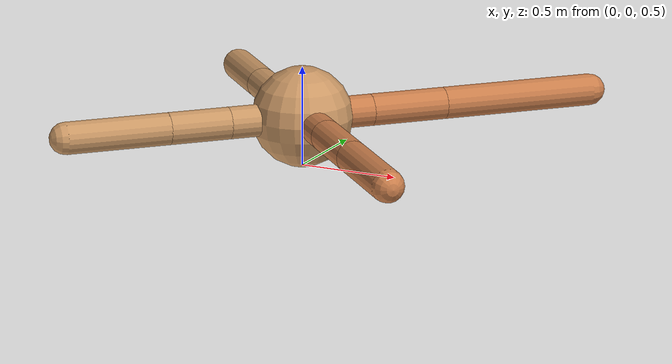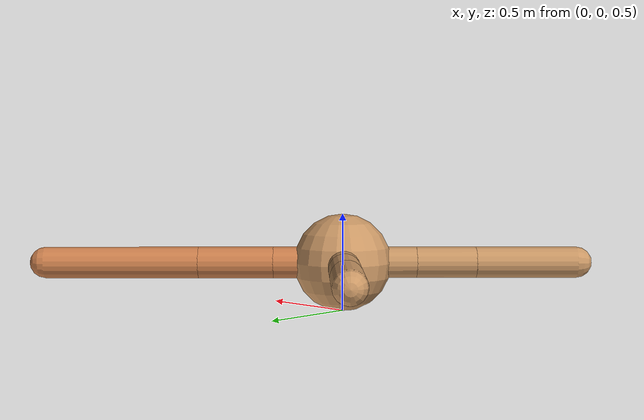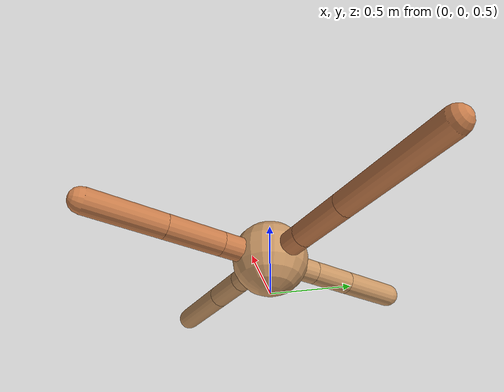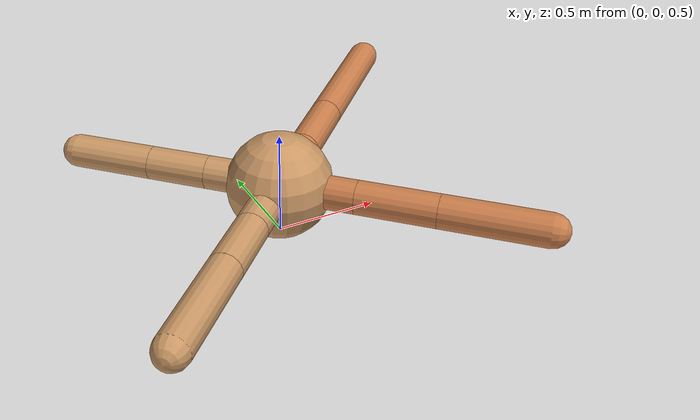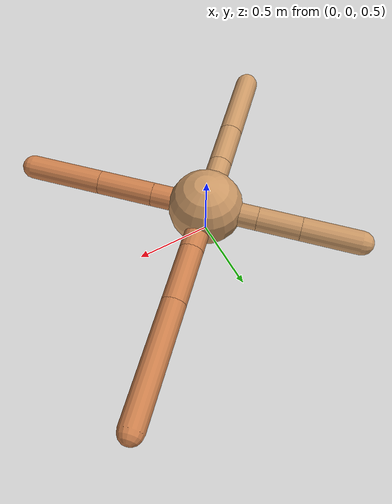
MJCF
<mujoco model="ant">
  <compiler angle="degree" coordinate="local" inertiafromgeom="true" />
  <option integrator="RK4" timestep="0.01" />
  <custom>
    <numeric data="0.0 0.0 0.55 1.0 0.0 0.0 0.0 0.0 1.0 0.0 -1.0 0.0 -1.0 0.0 1.0" name="init_qpos" />
  </custom>
  <default>
    <joint armature="1" damping="1" limited="true" />
    <geom conaffinity="0" condim="3" density="5.0" friction="1.5 0.1 0.1" margin="0.01" rgba="0.8 0.6 0.4 1" />
  </default>
  <worldbody>
    <body name="torso" pos="0 0 0.75">
      <geom name="torso_geom" pos="0 0 0" size="0.25" type="sphere" />

      <body name="front_left_leg" pos="0 0 0">
        <geom fromto="0.0 0.0 0.0 0.25163928409317665 0.25163928409317665 0.0" name="aux_1_geom" size="0.08" type="capsule" rgba=".8 .5 .3 1" />
        <body name="aux_1" pos="0.25163928409317665 0.25163928409317665 0.0">
          <joint axis="0 0 1" name="hip_1" pos="0.0 0.0 0.0" range="-40 40" type="hinge" />
          <geom fromto="0.0 0.0 0.0 0.27080114659995946 0.27080114659995946 0.0" name="left_leg_geom" size="0.08" type="capsule" rgba=".8 .5 .3 1" />
          <body pos="0.27080114659995946 0.27080114659995946 0.0" name="front_left_foot">
            <joint axis="-1 1 0" name="ankle_1" pos="0.0 0.0 0.0" range="30 100" type="hinge" />
            <geom fromto="0.0 0.0 0.0 0.5536578361265945 0.5536578361265945 0.0" name="left_ankle_geom" size="0.08" type="capsule" rgba=".8 .5 .3 1" />
          </body>
        </body>
      </body>
      <body name="front_right_leg" pos="0 0 0">
        <geom fromto="0.0 0.0 0.0 -0.2498266080134154 0.2498266080134154 0.0" name="aux_2_geom" size="0.08" type="capsule" />
        <body name="aux_2" pos="-0.2498266080134154 0.2498266080134154 0.0">
          <joint axis="0 0 1" name="hip_2" pos="0.0 0.0 0.0" range="-40 40" type="hinge" />
          <geom fromto="0.0 0.0 0.0 -0.20447191645754043 0.20447191645754043 0.0" name="right_leg_geom" size="0.08" type="capsule" />
          <body pos="-0.20447191645754043 0.20447191645754043 0.0" name="front_right_foot">
            <joint axis="1 1 0" name="ankle_2" pos="0.0 0.0 0.0" range="-100 -30" type="hinge" />
            <geom fromto="0.0 0.0 0.0 -0.27773076745546843 0.27773076745546843 0.0" name="right_ankle_geom" size="0.08" type="capsule" />
          </body>
        </body>
      </body>
      <body name="left_back_leg" pos="0 0 0">
        <geom fromto="0.0 0.0 0.0 -0.26742559710538355 -0.26742559710538355 0.0" name="aux_3_geom" size="0.08" type="capsule" />
        <body name="aux_3" pos="-0.26742559710538355 -0.26742559710538355 0.0">
          <joint axis="0 0 1" name="hip_3" pos="0.0 0.0 0.0" range="-40 40" type="hinge" />
          <geom fromto="0.0 0.0 0.0 -0.21600042436159922 -0.21600042436159922 0.0" name="back_leg_geom" size="0.08" type="capsule" />
          <body pos="-0.21600042436159922 -0.21600042436159922 0.0" name="left_back_foot">
            <joint axis="-1 1 0" name="ankle_3" pos="0.0 0.0 0.0" range="-100 -30" type="hinge" />
            <geom fromto="0.0 0.0 0.0 -0.36436741942150036 -0.36436741942150036 0.0" name="third_ankle_geom" size="0.08" type="capsule" />
          </body>
        </body>
      </body>
      <body name="right_back_leg" pos="0 0 0">
        <geom fromto="0.0 0.0 0.0 0.2598523732323165 -0.2598523732323165 0.0" name="aux_4_geom" size="0.08" type="capsule" rgba=".8 .5 .3 1" />
        <body name="aux_4" pos="0.2598523732323165 -0.2598523732323165 0.0">
          <joint axis="0 0 1" name="hip_4" pos="0.0 0.0 0.0" range="-40 40" type="hinge" />
          <geom fromto="0.0 0.0 0.0 0.2661852892303741 -0.2661852892303741 0.0" name="rightback_leg_geom" size="0.08" type="capsule" rgba=".8 .5 .3 1" />
          <body pos="0.2661852892303741 -0.2661852892303741 0.0" name="right_back_foot">
            <joint axis="1 1 0" name="ankle_4" pos="0.0 0.0 0.0" range="30 100" type="hinge" />
            <geom fromto="0.0 0.0 0.0 0.34776688647934456 -0.34776688647934456 0.0" name="fourth_ankle_geom" size="0.08" type="capsule" rgba=".8 .5 .3 1" />
          </body>
        </body>
      </body>
    </body>
  </worldbody>
  <actuator>
    <motor ctrllimited="true" ctrlrange="-1.0 1.0" joint="hip_4" gear="150" />
    <motor ctrllimited="true" ctrlrange="-1.0 1.0" joint="ankle_4" gear="150" />
    <motor ctrllimited="true" ctrlrange="-1.0 1.0" joint="hip_1" gear="150" />
    <motor ctrllimited="true" ctrlrange="-1.0 1.0" joint="ankle_1" gear="150" />
    <motor ctrllimited="true" ctrlrange="-1.0 1.0" joint="hip_2" gear="150" />
    <motor ctrllimited="true" ctrlrange="-1.0 1.0" joint="ankle_2" gear="150" />
    <motor ctrllimited="true" ctrlrange="-1.0 1.0" joint="hip_3" gear="150" />
    <motor ctrllimited="true" ctrlrange="-1.0 1.0" joint="ankle_3" gear="150" />
  </actuator>
</mujoco>
